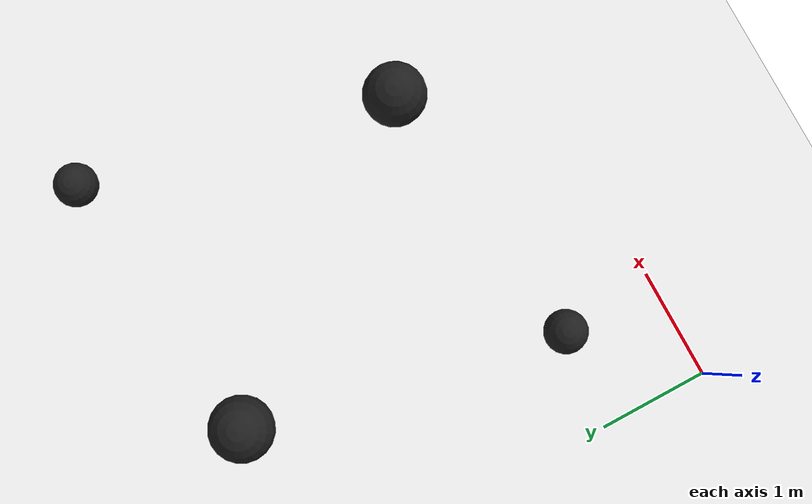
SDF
<?xml version="1.0"?>
<sdf version="1.6">
  <world name="circular_track">
    <!-- 地面 -->
    <include>
      <uri>model://ground_plane</uri>
    </include>

    <!-- 灯光 -->
    <include>
      <uri>model://sun</uri>
    </include>

    <!-- 障碍物 1 -->
    <model name="obs1">
      <pose>0.9 0.9 0.1 0 0 0</pose>  <!-- 障碍物位置 -->
      <link name="link">
        <collision name="collision">
          <geometry>
            <sphere>
              <radius>0.2</radius>  <!-- 障碍物大小 -->
            </sphere>
          </geometry>
        </collision>
        <visual name="visual">
          <geometry>
            <sphere>
              <radius>0.2</radius>
            </sphere>
          </geometry>
          <material>
            <script>
              <uri>file://media/materials/scripts/gazebo.material</uri>
              <name>Gazebo/Black</name>
            </script>
          </material>
        </visual>
      </link>
    </model>

    <!-- 障碍物 2 -->
    <model name="obs2">
      <pose>1.5 3.8 0.1 0 0 0</pose>  <!-- 障碍物位置 -->
      <link name="link">
        <collision name="collision">
          <geometry>
            <sphere>
              <radius>0.3</radius>  <!-- 障碍物大小 -->
            </sphere>
          </geometry>
        </collision>
        <visual name="visual">
          <geometry>
            <sphere>
              <radius>0.3</radius>
            </sphere>
          </geometry>
          <material>
            <script>
              <uri>file://media/materials/scripts/gazebo.material</uri>
              <name>Gazebo/Black</name>
            </script>
          </material>
        </visual>
      </link>
    </model>

    <!-- 障碍物 3 -->
    <model name="obs3">
      <pose>3.5 1.2 0. 0 0 0</pose>  <!-- 障碍物位置 -->
      <link name="link">
        <collision name="collision">
          <geometry>
            <sphere>
              <radius>0.3</radius>  <!-- 障碍物大小 -->
            </sphere>
          </geometry>
        </collision>
        <visual name="visual">
          <geometry>
            <sphere>
              <radius>0.3</radius>
            </sphere>
          </geometry>
          <material>
            <script>
              <uri>file://media/materials/scripts/gazebo.material</uri>
              <name>Gazebo/Black</name>
            </script>
          </material>
        </visual>
      </link>
    </model>
    <!-- 障碍物 4 -->
    <model name="obs4">
      <pose>4.1 4.1 0.1 0 0 0</pose>  <!-- 障碍物位置 -->
      <link name="link">
        <collision name="collision">
          <geometry>
            <sphere>
              <radius>0.2</radius>  <!-- 障碍物大小 -->
            </sphere>
          </geometry>
        </collision>
        <visual name="visual">
          <geometry>
            <sphere>
              <radius>0.2</radius>
            </sphere>
          </geometry>
          <material>
            <script>
              <uri>file://media/materials/scripts/gazebo.material</uri>
              <name>Gazebo/Black</name>
            </script>
          </material>
        </visual>
      </link>
    </model>

  </world>
</sdf>
